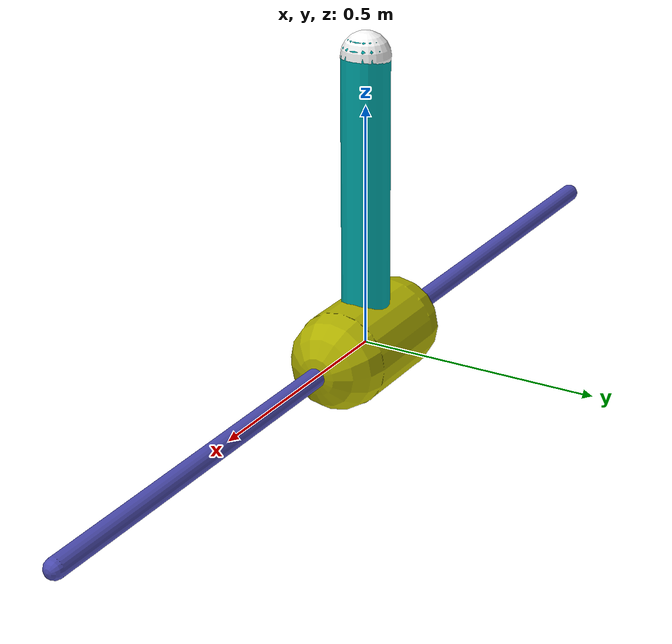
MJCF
<mujoco model="inverted pendulum">
	<compiler inertiafromgeom="true"/>
	<default>
		<joint armature="0" damping="1" limited="true"/>
		<geom contype="0" friction="1 0.1 0.1" rgba="0.7 0.7 0 1"/>
		<tendon/>
		<motor ctrlrange="-3 3"/>
	</default>
	<option gravity="0 0 -9.81" integrator="RK4" timestep="0.02"/>
	<size nstack="3000"/>
	<worldbody>
		<!--geom name="ground" type="plane" pos="0 0 0" /-->
		<geom name="rail" pos="0 0 0" quat="0.707 0 0.707 0" rgba="0.3 0.3 0.7 1" size="0.02 1" type="capsule"/>
		<body name="cart" pos="0 0 0">
			<joint axis="1 0 0" limited="true" name="slider" pos="0 0 0" range="-1 1" type="slide"/>
			<geom name="cart" pos="0 0 0" quat="0.707 0 0.707 0" size="0.1 0.1" type="capsule"/>
			<body name="pole" pos="0 0 0">
				<joint axis="0 1 0" name="hinge" pos="0 0 0" range="-90 90" type="hinge"/>
				<geom fromto="0 0 0 0.001 0 0.6" name="cpole" rgba="0 0.7 0.7 1" size="0.049 0.3" type="capsule"/>
				<site name='EndEffector' pos='0 0 0.6' size='0.05' rgba='1 1 1 1'/>
			</body>
		</body>
	</worldbody>
	<actuator>
		<motor ctrllimited="true" ctrlrange="-3 3" gear="100" joint="slider" name="slide"/>
	</actuator>

	<sensor>
        <jointpos name="x" joint="slider" noise="0.001"/>
        <jointpos name="theta" joint="hinge" noise="0.001"/>
		<jointvel name='dx' joint='slider' noise="0.001"/>
        <jointvel name='dtheta' joint='hinge' noise="0.001"/>
    </sensor>
</mujoco>
